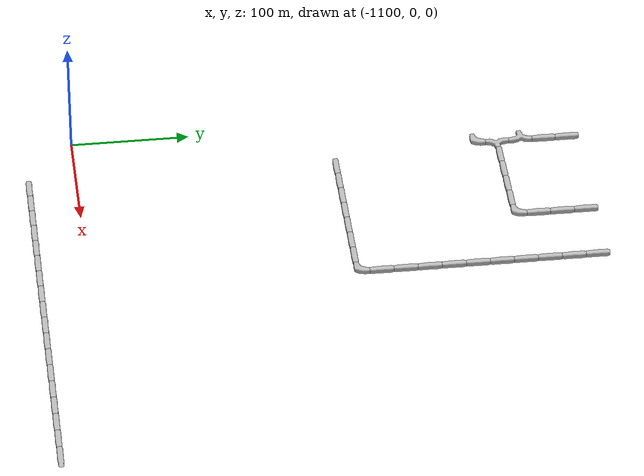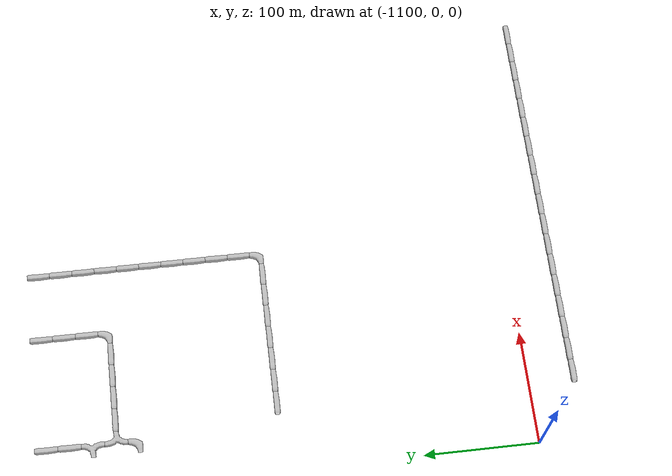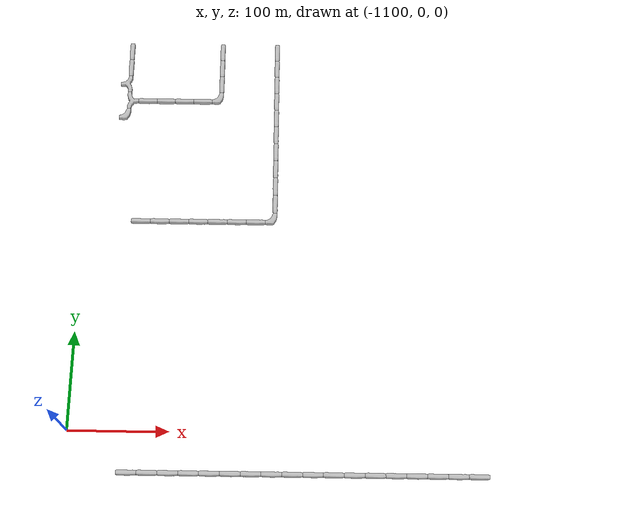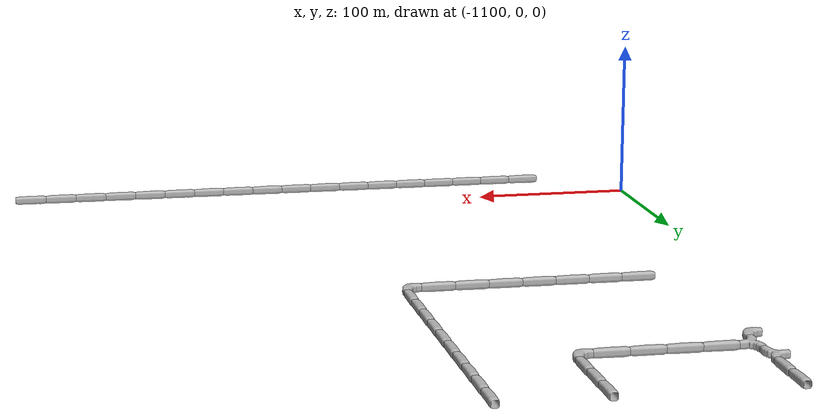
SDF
<sdf version="1.6">
 <world name="cave_16000_2">
  <include>
   <static>true</static>
   <name>cave_-35_-2</name>
   <pose>-700 -40 0 0 0 1.5707963267948966</pose>
   <uri>model://cave_straight_20m</uri>
  </include>
  <include>
   <static>true</static>
   <name>cave_-36_-2</name>
   <pose>-720 -40 0 0 0 1.5707963267948966</pose>
   <uri>model://cave_straight_20m</uri>
  </include>
  <include>
   <static>true</static>
   <name>cave_-37_-2</name>
   <pose>-740 -40 0 0 0 1.5707963267948966</pose>
   <uri>model://cave_straight_20m</uri>
  </include>
  <include>
   <static>true</static>
   <name>cave_-38_-2</name>
   <pose>-760 -40 0 0 0 1.5707963267948966</pose>
   <uri>model://cave_straight_20m</uri>
  </include>
  <include>
   <static>true</static>
   <name>cave_-39_-2</name>
   <pose>-780 -40 0 0 0 1.5707963267948966</pose>
   <uri>model://cave_straight_20m</uri>
  </include>
  <include>
   <static>true</static>
   <name>cave_-40_-2</name>
   <pose>-800 -40 0 0 0 1.5707963267948966</pose>
   <uri>model://cave_straight_20m</uri>
  </include>
  <include>
   <static>true</static>
   <name>cave_-41_-2</name>
   <pose>-820 -40 0 0 0 1.5707963267948966</pose>
   <uri>model://cave_straight_20m</uri>
  </include>
  <include>
   <static>true</static>
   <name>cave_-42_-2</name>
   <pose>-840 -40 0 0 0 1.5707963267948966</pose>
   <uri>model://cave_straight_20m</uri>
  </include>
  <include>
   <static>true</static>
   <name>cave_-43_-2</name>
   <pose>-860 -40 0 0 0 1.5707963267948966</pose>
   <uri>model://cave_straight_20m</uri>
  </include>
  <include>
   <static>true</static>
   <name>cave_-44_-2</name>
   <pose>-880 -40 0 0 0 1.5707963267948966</pose>
   <uri>model://cave_straight_20m</uri>
  </include>
  <include>
   <static>true</static>
   <name>cave_-45_-2</name>
   <pose>-900 -40 0 0 0 1.5707963267948966</pose>
   <uri>model://cave_straight_20m</uri>
  </include>
  <include>
   <static>true</static>
   <name>cave_-46_-2</name>
   <pose>-920 -40 0 0 0 1.5707963267948966</pose>
   <uri>model://cave_straight_20m</uri>
  </include>
  <include>
   <static>true</static>
   <name>cave_-47_-2</name>
   <pose>-940 -40 0 0 0 1.5707963267948966</pose>
   <uri>model://cave_straight_20m</uri>
  </include>
  <include>
   <static>true</static>
   <name>cave_-48_-2</name>
   <pose>-960 -40 0 0 0 1.5707963267948966</pose>
   <uri>model://cave_straight_20m</uri>
  </include>
  <include>
   <static>true</static>
   <name>cave_-49_-2</name>
   <pose>-980 -40 0 0 0 1.5707963267948966</pose>
   <uri>model://cave_straight_20m</uri>
  </include>
  <include>
   <static>true</static>
   <name>cave_-50_-2</name>
   <pose>-1000 -40 0 0 0 1.5707963267948966</pose>
   <uri>model://cave_straight_20m</uri>
  </include>
  <include>
   <static>true</static>
   <name>cave_-51_-2</name>
   <pose>-1020 -40 0 0 0 1.5707963267948966</pose>
   <uri>model://cave_straight_20m</uri>
  </include>
  <include>
   <static>true</static>
   <name>cave_-52_-2</name>
   <pose>-1040 -40 0 0 0 1.5707963267948966</pose>
   <uri>model://cave_straight_20m</uri>
  </include>
  <include>
   <static>true</static>
   <name>cave_-52_11</name>
   <pose>-1040 220 0 0 0 1.5707963267948966</pose>
   <uri>model://cave_straight_20m</uri>
  </include>
  <include>
   <static>true</static>
   <name>cave_-51_11</name>
   <pose>-1020 220 0 0 0 1.5707963267948966</pose>
   <uri>model://cave_straight_20m</uri>
  </include>
  <include>
   <static>true</static>
   <name>cave_-50_11</name>
   <pose>-1000 220 0 0 0 1.5707963267948966</pose>
   <uri>model://cave_straight_20m</uri>
  </include>
  <include>
   <static>true</static>
   <name>cave_-49_11</name>
   <pose>-980 220 0 0 0 1.5707963267948966</pose>
   <uri>model://cave_straight_20m</uri>
  </include>
  <include>
   <static>true</static>
   <name>cave_-48_11</name>
   <pose>-960 220 0 0 0 1.5707963267948966</pose>
   <uri>model://cave_straight_20m</uri>
  </include>
  <include>
   <static>true</static>
   <name>cave_-47_11</name>
   <pose>-940 220 0 0 0 1.5707963267948966</pose>
   <uri>model://cave_straight_20m</uri>
  </include>
  <include>
   <static>true</static>
   <name>cave_-46_11</name>
   <pose>-920 220 0 0 0 1.5707963267948966</pose>
   <uri>model://cave_straight_20m</uri>
  </include>
  <include>
   <static>true</static>
   <name>cave_-45_11</name>
   <pose>-900 220 0 0 0 1.5707963267948966</pose>
   <uri>model://cave_L_20m</uri>
  </include>
  <include>
   <static>true</static>
   <name>cave_-45_12</name>
   <pose>-900 240 0 0 0 0.0</pose>
   <uri>model://cave_straight_20m</uri>
  </include>
  <include>
   <static>true</static>
   <name>cave_-45_13</name>
   <pose>-900 260 0 0 0 0.0</pose>
   <uri>model://cave_straight_20m</uri>
  </include>
  <include>
   <static>true</static>
   <name>cave_-45_14</name>
   <pose>-900 280 0 0 0 0.0</pose>
   <uri>model://cave_straight_20m</uri>
  </include>
  <include>
   <static>true</static>
   <name>cave_-45_15</name>
   <pose>-900 300 0 0 0 0.0</pose>
   <uri>model://cave_straight_20m</uri>
  </include>
  <include>
   <static>true</static>
   <name>cave_-45_16</name>
   <pose>-900 320 0 0 0 0.0</pose>
   <uri>model://cave_straight_20m</uri>
  </include>
  <include>
   <static>true</static>
   <name>cave_-45_17</name>
   <pose>-900 340 0 0 0 0.0</pose>
   <uri>model://cave_straight_20m</uri>
  </include>
  <include>
   <static>true</static>
   <name>cave_-45_18</name>
   <pose>-900 360 0 0 0 0.0</pose>
   <uri>model://cave_straight_20m</uri>
  </include>
  <include>
   <static>true</static>
   <name>cave_-45_19</name>
   <pose>-900 380 0 0 0 0.0</pose>
   <uri>model://cave_straight_20m</uri>
  </include>
  <include>
   <static>true</static>
   <name>cave_-45_20</name>
   <pose>-900 400 0 0 0 0.0</pose>
   <uri>model://cave_straight_20m</uri>
  </include>
  <include>
   <static>true</static>
   <name>cave_-45_21</name>
   <pose>-900 420 0 0 0 0.0</pose>
   <uri>model://cave_straight_20m</uri>
  </include>
  <include>
   <static>true</static>
   <name>cave_-53_19</name>
   <pose>-1060 380 0 0 0 1.5707963267948966</pose>
   <uri>model://cave_3way_20m</uri>
  </include>
  <include>
   <static>true</static>
   <name>cave_-53_18</name>
   <pose>-1060 360 0 0 0 -1.5707963267948966</pose>
   <uri>model://cave_3way_20m</uri>
  </include>
  <include>
   <static>true</static>
   <name>cave_-52_18</name>
   <pose>-1040 360 0 0 0 1.5707963267948966</pose>
   <uri>model://cave_straight_20m</uri>
  </include>
  <include>
   <static>true</static>
   <name>cave_-51_18</name>
   <pose>-1020 360 0 0 0 1.5707963267948966</pose>
   <uri>model://cave_straight_20m</uri>
  </include>
  <include>
   <static>true</static>
   <name>cave_-50_18</name>
   <pose>-1000 360 0 0 0 1.5707963267948966</pose>
   <uri>model://cave_straight_20m</uri>
  </include>
  <include>
   <static>true</static>
   <name>cave_-49_18</name>
   <pose>-980 360 0 0 0 1.5707963267948966</pose>
   <uri>model://cave_straight_20m</uri>
  </include>
  <include>
   <static>true</static>
   <name>cave_-48_18</name>
   <pose>-960 360 0 0 0 1.5707963267948966</pose>
   <uri>model://cave_L_20m</uri>
  </include>
  <include>
   <static>true</static>
   <name>cave_-48_19</name>
   <pose>-960 380 0 0 0 0.0</pose>
   <uri>model://cave_straight_20m</uri>
  </include>
  <include>
   <static>true</static>
   <name>cave_-48_20</name>
   <pose>-960 400 0 0 0 0.0</pose>
   <uri>model://cave_straight_20m</uri>
  </include>
  <include>
   <static>true</static>
   <name>cave_-48_21</name>
   <pose>-960 420 0 0 0 0.0</pose>
   <uri>model://cave_straight_20m</uri>
  </include>
  <include>
   <static>true</static>
   <name>cave_-53_17</name>
   <pose>-1060 340 0 0 0 1.5707963267948966</pose>
   <uri>model://cave_L_20m</uri>
  </include>
  <include>
   <static>true</static>
   <name>cave_-53_20</name>
   <pose>-1060 400 0 0 0 0.0</pose>
   <uri>model://cave_straight_20m</uri>
  </include>
  <include>
   <static>true</static>
   <name>cave_-53_21</name>
   <pose>-1060 420 0 0 0 0.0</pose>
   <uri>model://cave_straight_20m</uri>
  </include>
 </world>
</sdf>
